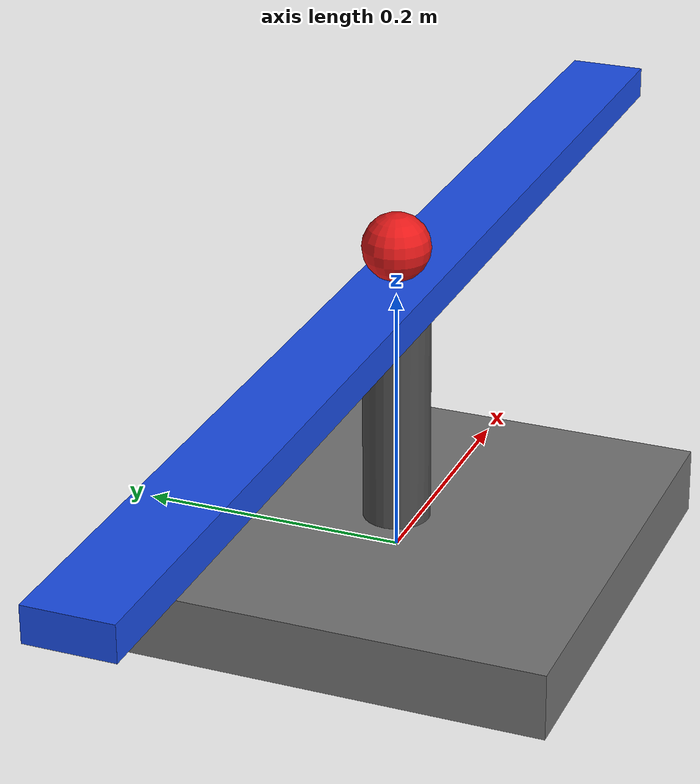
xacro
<?xml version="1.0"?>
<robot name="ball_beam" xmlns:xacro="http://www.ros.org/wiki/xacro">

  <!-- Gazebo / ros2_control plugin                                 -->

  <ros2_control name="GazeboSystem" type="system">
    <hardware>
      <plugin>gz_ros2_control/GazeboSimSystem</plugin>
    </hardware>

    <!-- Beam joint: position-controlled -->
    <joint name="beam_joint">
      <command_interface name="position">
        <param name="min">-0.4</param>
        <param name="max"> 0.4</param>
      </command_interface>
      <state_interface name="position"/>
      <state_interface name="velocity"/>
    </joint>

    <!-- Ball joint: passive (read position/velocity only) -->
    <joint name="ball_joint">
      <state_interface name="position"/>
      <state_interface name="velocity"/>
    </joint>
  </ros2_control>
<gazebo>
  <plugin filename="libgz_ros2_control-system.so"
          name="gz_ros2_control::GazeboSimROS2ControlPlugin">
    <parameters>$(find ball_balancer)/config/controllers.yaml</parameters>
  </plugin>
</gazebo>
  <!-- BASE PLATE                                                   -->

  <link name="base_link">
    <visual>
      <origin xyz="0 0 0" rpy="0 0 0"/>
      <geometry>
        <box size="0.35 0.35 0.05"/>
      </geometry>
      <material name="gray">
        <color rgba="0.45 0.45 0.45 1"/>
      </material>
    </visual>
    <collision>
      <origin xyz="0 0 0" rpy="0 0 0"/>
      <geometry>
        <box size="0.35 0.35 0.05"/>
      </geometry>
    </collision>
    <inertial>
      <origin xyz="0 0 0"/>
      <mass value="5.0"/>
      <inertia ixx="0.05" iyy="0.05" izz="0.08"
               ixy="0.0" ixz="0.0" iyz="0.0"/>
    </inertial>
  </link>

  <!-- SUPPORT PILLAR                                               -->
  <!-- Visually bridges the gap between base and beam pivot        -->

  <link name="pillar_link">
    <visual>
      <origin xyz="0 0 0" rpy="0 0 0"/>
      <geometry>
        <!-- height = 0.175 m  (sits from base top to beam pivot)  -->
        <cylinder radius="0.025" length="0.175"/>
      </geometry>
      <material name="dark_gray">
        <color rgba="0.3 0.3 0.3 1"/>
      </material>
    </visual>
    <collision>
      <origin xyz="0 0 0" rpy="0 0 0"/>
      <geometry>
        <cylinder radius="0.025" length="0.175"/>
      </geometry>
    </collision>
    <inertial>
      <origin xyz="0 0 0"/>
      <mass value="0.5"/>
      <inertia ixx="0.002" iyy="0.002" izz="0.0003"
               ixy="0.0" ixz="0.0" iyz="0.0"/>
    </inertial>
  </link>

  <!-- Fixed joint: base_link → pillar                            -->
  <!-- Centre of pillar is at z = base_top + pillar_half          -->
  <!--   base_top  = 0.025  (half of 0.05)                        -->
  <!--   pillar_half = 0.0875                                      -->
  <!--   total offset = 0.025 + 0.0875 = 0.1125                   -->
  <joint name="pillar_joint" type="fixed">
    <parent link="base_link"/>
    <child  link="pillar_link"/>
    <origin xyz="0 0 0.1125" rpy="0 0 0"/>
  </joint>

  <!-- BEAM                                                         -->

  <link name="beam_link">
    <visual>
      <origin xyz="0 0 0" rpy="0 0 0"/>
      <geometry>
        <box size="1.0 0.06 0.025"/>
      </geometry>
      <material name="blue">
        <color rgba="0.1 0.3 0.9 1"/>
      </material>
    </visual>
    <collision>
      <origin xyz="0 0 0" rpy="0 0 0"/>
      <geometry>
        <box size="1.0 0.06 0.025"/>
      </geometry>
    </collision>
    <inertial>
      <origin xyz="0 0 0"/>
      <mass value="0.8"/>
      <!-- Thin rod along x: Ixx small, Iyy≈Izz≈mL²/12 -->
      <inertia ixx="0.002" iyy="0.067" izz="0.067"
               ixy="0.0" ixz="0.0" iyz="0.0"/>
    </inertial>
  </link>

  <!-- Revolute joint: pillar_top → beam pivot                     -->
  <!-- Pillar top = pillar_centre + pillar_half = 0.1125+0.0875    -->
  <!--            = 0.2 m above base_link origin                   -->
  <!-- We reference from pillar_link, so offset = +pillar_half     -->
  <joint name="beam_joint" type="revolute">
    <parent link="pillar_link"/>
    <child  link="beam_link"/>
    <!-- top of pillar relative to pillar centre -->
    <origin xyz="0 0 0.0875" rpy="0 0 0"/>
    <axis xyz="0 1 0"/>
    <limit lower="-0.4" upper="0.4" effort="50" velocity="2.0"/>
    <dynamics damping="0.5" friction="0.1"/>
  </joint>

  <!-- BALL                                                         -->

  <link name="ball_link">
    <visual>
      <origin xyz="0 0 0" rpy="0 0 0"/>
      <geometry>
        <sphere radius="0.025"/>
      </geometry>
      <material name="red">
        <color rgba="0.9 0.1 0.1 1"/>
      </material>
    </visual>
    <collision>
      <origin xyz="0 0 0" rpy="0 0 0"/>
      <geometry>
        <sphere radius="0.025"/>
      </geometry>
    </collision>
    <inertial>
      <origin xyz="0 0 0"/>
      <mass value="0.1"/>
      <!-- Solid sphere: I = 2/5 * m * r² -->
      <inertia ixx="0.00001" iyy="0.00001" izz="0.00001"
               ixy="0.0" ixz="0.0" iyz="0.0"/>
    </inertial>
  </link>

  <!-- Prismatic joint along beam (x-axis) so ball slides           -->
  <!-- Ball rests on top of beam: offset z = beam_half + ball_r    -->
  <!--   beam_half = 0.0125,  ball_r = 0.025  → 0.0375            -->
  <joint name="ball_joint" type="prismatic">
    <parent link="beam_link"/>
    <child  link="ball_link"/>
    <origin xyz="0 0 0.0375" rpy="0 0 0"/>
    <axis xyz="1 0 0"/>
    <limit lower="-0.45" upper="0.45" effort="0.0" velocity="5.0"/>
    <dynamics damping="0.05" friction="0.01"/>
  </joint>

</robot>
